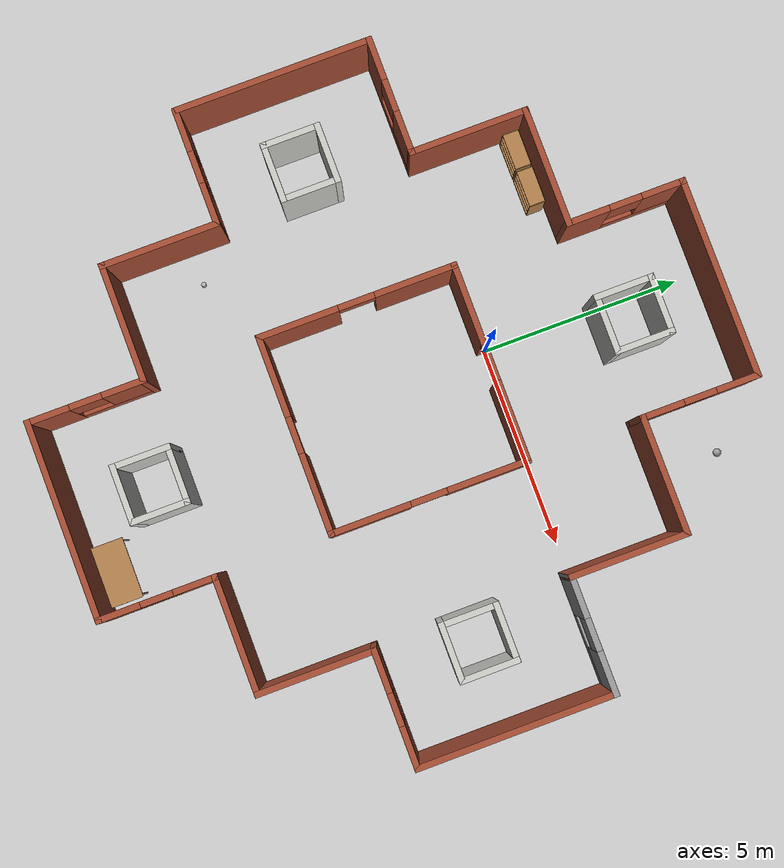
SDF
<sdf version="1.6">
 <world name="default">
  <light name="sun" type="directional">
   <pose>0 0 10 0 -0 0</pose>
   <diffuse>0.8 0.8 0.8 1</diffuse>
   <specular>0.2 0.2 0.2 1</specular>
   <attenuation>
    <range>1000</range>
    <constant>0.9</constant>
    <linear>0.01</linear>
    <quadratic>0.001</quadratic>
   </attenuation>
   <direction>-0.5 0.1 -0.9</direction>
  </light>
  <model name="ground_plane">
   <static>1</static>
   <link name="link">
    <collision name="collision">
     <geometry><plane><normal>0 0 1</normal><size>100 100</size></plane></geometry>
     <surface><friction><ode><mu>100</mu><mu2>50</mu2></ode></friction></surface>
    </collision>
    <visual name="visual">
     <cast_shadows>0</cast_shadows>
     <geometry><plane><normal>0 0 1</normal><size>100 100</size></plane></geometry>
     <material>
      <script><uri>file://media/materials/scripts/gazebo.material</uri><name>Gazebo/Grey</name></script>
     </material>
    </visual>
   </link>
  </model>
  <gravity>0 0 -9.8</gravity>
  <magnetic_field>6e-06 2.3e-05 -4.2e-05</magnetic_field>
  <atmosphere type="adiabatic"/>
  <physics name="default_physics" default="0" type="ode">
   <max_step_size>0.001</max_step_size>
   <real_time_factor>1</real_time_factor>
   <real_time_update_rate>1000</real_time_update_rate>
  </physics>
  <scene><ambient>0.4 0.4 0.4 1</ambient><background>0.7 0.7 0.7 1</background><shadows>1</shadows></scene>
  <spherical_coordinates>
   <surface_model>EARTH_WGS84</surface_model>
   <latitude_deg>0</latitude_deg>
   <longitude_deg>0</longitude_deg>
   <elevation>0</elevation>
   <heading_deg>0</heading_deg>
  </spherical_coordinates>
  <model name="flower_building">
   <pose>0.473289 -2.56902 0 0 -0 0</pose>
   <link name="Wall_0">
    <pose>0 -2.425 0 0 -0 0</pose>
    <visual name="Wall_0_Visual_0">
     <pose>-1.47548 0 1.25 0 -0 0</pose>
     <geometry><box><size>2.04905 0.15 2.5</size></box></geometry>
     <material>
      <script><uri>file://media/materials/scripts/gazebo.material</uri><name>Gazebo/Bricks</name></script>
      <ambient>1 1 1 1</ambient>
     </material>
     <meta><layer>0</layer></meta>
    </visual>
    <collision name="Wall_0_Collision_0">
     <geometry><box><size>2.04905 0.15 2.5</size></box></geometry>
     <pose>-1.47548 0 1.25 0 -0 0</pose>
    </collision>
    <visual name="Wall_0_Visual_1">
     <pose>1.47452 0 1.25 0 -0 0</pose>
     <geometry><box><size>2.05096 0.15 2.5</size></box></geometry>
     <material>
      <script><uri>file://media/materials/scripts/gazebo.material</uri><name>Gazebo/Bricks</name></script>
      <ambient>1 1 1 1</ambient>
     </material>
     <meta><layer>0</layer></meta>
    </visual>
    <collision name="Wall_0_Collision_1">
     <geometry><box><size>2.05096 0.15 2.5</size></box></geometry>
     <pose>1.47452 0 1.25 0 -0 0</pose>
    </collision>
    <visual name="Wall_0_Visual_2">
     <pose>-0.000955 0 2.25 0 -0 0</pose>
     <geometry><box><size>0.9 0.15 0.5</size></box></geometry>
     <material>
      <script><uri>file://media/materials/scripts/gazebo.material</uri><name>Gazebo/Bricks</name></script>
      <ambient>1 1 1 1</ambient>
     </material>
     <meta><layer>0</layer></meta>
    </visual>
    <collision name="Wall_0_Collision_2">
     <geometry><box><size>0.9 0.15 0.5</size></box></geometry>
     <pose>-0.000955 0 2.25 0 -0 0</pose>
    </collision>
   </link>
   <link name="Wall_1">
    <pose>2.425 0 0 0 -0 1.5708</pose>
    <visual name="Wall_1_Visual_0">
     <pose>-1.47928 0 1.25 0 -0 0</pose>
     <geometry><box><size>2.04145 0.15 2.5</size></box></geometry>
     <material>
      <script><uri>file://media/materials/scripts/gazebo.material</uri><name>Gazebo/Bricks</name></script>
      <ambient>1 1 1 1</ambient>
     </material>
     <meta><layer>0</layer></meta>
    </visual>
    <collision name="Wall_1_Collision_0">
     <geometry><box><size>2.04145 0.15 2.5</size></box></geometry>
     <pose>-1.47928 0 1.25 0 -0 0</pose>
    </collision>
    <visual name="Wall_1_Visual_1">
     <pose>1.47072 0 1.25 0 -0 0</pose>
     <geometry><box><size>2.05855 0.15 2.5</size></box></geometry>
     <material>
      <script><uri>file://media/materials/scripts/gazebo.material</uri><name>Gazebo/Bricks</name></script>
      <ambient>1 1 1 1</ambient>
     </material>
     <meta><layer>0</layer></meta>
    </visual>
    <collision name="Wall_1_Collision_1">
     <geometry><box><size>2.05855 0.15 2.5</size></box></geometry>
     <pose>1.47072 0 1.25 0 -0 0</pose>
    </collision>
    <visual name="Wall_1_Visual_2">
     <pose>-0.008554 0 2.25 0 -0 0</pose>
     <geometry><box><size>0.9 0.15 0.5</size></box></geometry>
     <material>
      <script><uri>file://media/materials/scripts/gazebo.material</uri><name>Gazebo/Bricks</name></script>
      <ambient>1 1 1 1</ambient>
     </material>
     <meta><layer>0</layer></meta>
    </visual>
    <collision name="Wall_1_Collision_2">
     <geometry><box><size>0.9 0.15 0.5</size></box></geometry>
     <pose>-0.008554 0 2.25 0 -0 0</pose>
    </collision>
   </link>
   <link name="Wall_10">
    <collision name="Wall_10_Collision">
     <geometry><box><size>5 0.15 2.5</size></box></geometry>
     <pose>0 0 1.25 0 -0 0</pose>
    </collision>
    <visual name="Wall_10_Visual">
     <pose>0 0 1.25 0 -0 0</pose>
     <geometry><box><size>5 0.15 2.5</size></box></geometry>
     <material>
      <script><uri>file://media/materials/scripts/gazebo.material</uri><name>Gazebo/Bricks</name></script>
      <ambient>1 1 1 1</ambient>
     </material>
     <meta><layer>0</layer></meta>
    </visual>
    <pose>-8.125 0 0 0 -0 1.5708</pose>
   </link>
   <link name="Wall_11">
    <pose>-6.7 2.425 0 0 -0 0</pose>
    <visual name="Wall_11_Visual_0">
     <pose>-0.954007 0 1.25 0 -0 0</pose>
     <geometry><box><size>1.09199 0.15 2.5</size></box></geometry>
     <material>
      <script><uri>file://media/materials/scripts/gazebo.material</uri><name>Gazebo/Bricks</name></script>
      <ambient>1 1 1 1</ambient>
     </material>
     <meta><layer>0</layer></meta>
    </visual>
    <collision name="Wall_11_Collision_0">
     <geometry><box><size>1.09199 0.15 2.5</size></box></geometry>
     <pose>-0.954007 0 1.25 0 -0 0</pose>
    </collision>
    <visual name="Wall_11_Visual_1">
     <pose>0.545993 0 0.25 0 -0 0</pose>
     <geometry><box><size>1.90801 0.15 0.5</size></box></geometry>
     <material>
      <script><uri>file://media/materials/scripts/gazebo.material</uri><name>Gazebo/Bricks</name></script>
      <ambient>1 1 1 1</ambient>
     </material>
     <meta><layer>0</layer></meta>
    </visual>
    <collision name="Wall_11_Collision_1">
     <geometry><box><size>1.90801 0.15 0.5</size></box></geometry>
     <pose>0.545993 0 0.25 0 -0 0</pose>
    </collision>
    <visual name="Wall_11_Visual_2">
     <pose>0.945993 0 1.5 0 -0 0</pose>
     <geometry><box><size>1.10801 0.15 2</size></box></geometry>
     <material>
      <script><uri>file://media/materials/scripts/gazebo.material</uri><name>Gazebo/Bricks</name></script>
      <ambient>1 1 1 1</ambient>
     </material>
     <meta><layer>0</layer></meta>
    </visual>
    <collision name="Wall_11_Collision_2">
     <geometry><box><size>1.10801 0.15 2</size></box></geometry>
     <pose>0.945993 0 1.5 0 -0 0</pose>
    </collision>
    <visual name="Wall_11_Visual_3">
     <pose>-0.008013 0 1.9 0 -0 0</pose>
     <geometry><box><size>0.8 0.15 1.2</size></box></geometry>
     <material>
      <script><uri>file://media/materials/scripts/gazebo.material</uri><name>Gazebo/Bricks</name></script>
      <ambient>1 1 1 1</ambient>
     </material>
     <meta><layer>0</layer></meta>
    </visual>
    <collision name="Wall_11_Collision_3">
     <geometry><box><size>0.8 0.15 1.2</size></box></geometry>
     <pose>-0.008013 0 1.9 0 -0 0</pose>
    </collision>
   </link>
   <link name="Wall_12">
    <collision name="Wall_12_Collision">
     <geometry><box><size>3 0.15 2.5</size></box></geometry>
     <pose>0 0 1.25 0 -0 0</pose>
    </collision>
    <visual name="Wall_12_Visual">
     <pose>0 0 1.25 0 -0 0</pose>
     <geometry><box><size>3 0.15 2.5</size></box></geometry>
     <material>
      <script><uri>file://media/materials/scripts/gazebo.material</uri><name>Gazebo/Bricks</name></script>
      <ambient>1 1 1 1</ambient>
     </material>
     <meta><layer>0</layer></meta>
    </visual>
    <pose>-5.275 3.85 0 0 -0 1.5708</pose>
   </link>
   <link name="Wall_13">
    <collision name="Wall_13_Collision">
     <geometry><box><size>3 0.15 2.5</size></box></geometry>
     <pose>0 0 1.25 0 -0 0</pose>
    </collision>
    <visual name="Wall_13_Visual">
     <pose>0 0 1.25 0 -0 0</pose>
     <geometry><box><size>3 0.15 2.5</size></box></geometry>
     <material>
      <script><uri>file://media/materials/scripts/gazebo.material</uri><name>Gazebo/Bricks</name></script>
      <ambient>1 1 1 1</ambient>
     </material>
     <meta><layer>0</layer></meta>
    </visual>
    <pose>-3.85 5.275 0 0 -0 0</pose>
   </link>
   <link name="Wall_14">
    <pose>-2.425 6.7 0 0 -0 1.5708</pose>
    <visual name="Wall_14_Visual_0">
     <pose>-0.950748 0 1.25 0 -0 0</pose>
     <geometry><box><size>1.09851 0.15 2.5</size></box></geometry>
     <material>
      <script><uri>file://media/materials/scripts/gazebo.material</uri><name>Gazebo/Bricks</name></script>
      <ambient>1 1 1 1</ambient>
     </material>
     <meta><layer>0</layer></meta>
    </visual>
    <collision name="Wall_14_Collision_0">
     <geometry><box><size>1.09851 0.15 2.5</size></box></geometry>
     <pose>-0.950748 0 1.25 0 -0 0</pose>
    </collision>
    <visual name="Wall_14_Visual_1">
     <pose>0.549252 0 0.25 0 -0 0</pose>
     <geometry><box><size>1.90149 0.15 0.5</size></box></geometry>
     <material>
      <script><uri>file://media/materials/scripts/gazebo.material</uri><name>Gazebo/Bricks</name></script>
      <ambient>1 1 1 1</ambient>
     </material>
     <meta><layer>0</layer></meta>
    </visual>
    <collision name="Wall_14_Collision_1">
     <geometry><box><size>1.90149 0.15 0.5</size></box></geometry>
     <pose>0.549252 0 0.25 0 -0 0</pose>
    </collision>
    <visual name="Wall_14_Visual_2">
     <pose>0.949252 0 1.5 0 -0 0</pose>
     <geometry><box><size>1.10149 0.15 2</size></box></geometry>
     <material>
      <script><uri>file://media/materials/scripts/gazebo.material</uri><name>Gazebo/Bricks</name></script>
      <ambient>1 1 1 1</ambient>
     </material>
     <meta><layer>0</layer></meta>
    </visual>
    <collision name="Wall_14_Collision_2">
     <geometry><box><size>1.10149 0.15 2</size></box></geometry>
     <pose>0.949252 0 1.5 0 -0 0</pose>
    </collision>
    <visual name="Wall_14_Visual_3">
     <pose>-0.001495 0 1.9 0 -0 0</pose>
     <geometry><box><size>0.8 0.15 1.2</size></box></geometry>
     <material>
      <script><uri>file://media/materials/scripts/gazebo.material</uri><name>Gazebo/Bricks</name></script>
      <ambient>1 1 1 1</ambient>
     </material>
     <meta><layer>0</layer></meta>
    </visual>
    <collision name="Wall_14_Collision_3">
     <geometry><box><size>0.8 0.15 1.2</size></box></geometry>
     <pose>-0.001495 0 1.9 0 -0 0</pose>
    </collision>
   </link>
   <link name="Wall_15">
    <collision name="Wall_15_Collision">
     <geometry><box><size>5 0.15 2.5</size></box></geometry>
     <pose>0 0 1.25 0 -0 0</pose>
    </collision>
    <visual name="Wall_15_Visual">
     <pose>0 0 1.25 0 -0 0</pose>
     <geometry><box><size>5 0.15 2.5</size></box></geometry>
     <material>
      <script><uri>file://media/materials/scripts/gazebo.material</uri><name>Gazebo/Bricks</name></script>
      <ambient>1 1 1 1</ambient>
     </material>
     <meta><layer>0</layer></meta>
    </visual>
    <pose>0 8.125 0 0 -0 0</pose>
   </link>
   <link name="Wall_18">
    <pose>2.425 6.7 0 0 0 -1.5708</pose>
    <visual name="Wall_18_Visual_0">
     <pose>-0.949252 0 1.25 0 -0 0</pose>
     <geometry><box><size>1.10149 0.15 2.5</size></box></geometry>
     <material>
      <script><uri>file://media/materials/scripts/gazebo.material</uri><name>Gazebo/Bricks</name></script>
      <ambient>1 1 1 1</ambient>
     </material>
     <meta><layer>0</layer></meta>
    </visual>
    <collision name="Wall_18_Collision_0">
     <geometry><box><size>1.10149 0.15 2.5</size></box></geometry>
     <pose>-0.949252 0 1.25 0 -0 0</pose>
    </collision>
    <visual name="Wall_18_Visual_1">
     <pose>0.550748 0 0.25 0 -0 0</pose>
     <geometry><box><size>1.89851 0.15 0.5</size></box></geometry>
     <material>
      <script><uri>file://media/materials/scripts/gazebo.material</uri><name>Gazebo/Bricks</name></script>
      <ambient>1 1 1 1</ambient>
     </material>
     <meta><layer>0</layer></meta>
    </visual>
    <collision name="Wall_18_Collision_1">
     <geometry><box><size>1.89851 0.15 0.5</size></box></geometry>
     <pose>0.550748 0 0.25 0 -0 0</pose>
    </collision>
    <visual name="Wall_18_Visual_2">
     <pose>0.950748 0 1.5 0 -0 0</pose>
     <geometry><box><size>1.09851 0.15 2</size></box></geometry>
     <material>
      <script><uri>file://media/materials/scripts/gazebo.material</uri><name>Gazebo/Bricks</name></script>
      <ambient>1 1 1 1</ambient>
     </material>
     <meta><layer>0</layer></meta>
    </visual>
    <collision name="Wall_18_Collision_2">
     <geometry><box><size>1.09851 0.15 2</size></box></geometry>
     <pose>0.950748 0 1.5 0 -0 0</pose>
    </collision>
    <visual name="Wall_18_Visual_3">
     <pose>0.001495 0 1.9 0 -0 0</pose>
     <geometry><box><size>0.8 0.15 1.2</size></box></geometry>
     <material>
      <script><uri>file://media/materials/scripts/gazebo.material</uri><name>Gazebo/Bricks</name></script>
      <ambient>1 1 1 1</ambient>
     </material>
     <meta><layer>0</layer></meta>
    </visual>
    <collision name="Wall_18_Collision_3">
     <geometry><box><size>0.8 0.15 1.2</size></box></geometry>
     <pose>0.001495 0 1.9 0 -0 0</pose>
    </collision>
   </link>
   <link name="Wall_19">
    <collision name="Wall_19_Collision">
     <geometry><box><size>3 0.15 2.5</size></box></geometry>
     <pose>0 0 1.25 0 -0 0</pose>
    </collision>
    <visual name="Wall_19_Visual">
     <pose>0 0 1.25 0 -0 0</pose>
     <geometry><box><size>3 0.15 2.5</size></box></geometry>
     <material>
      <script><uri>file://media/materials/scripts/gazebo.material</uri><name>Gazebo/Bricks</name></script>
      <ambient>1 1 1 1</ambient>
     </material>
     <meta><layer>0</layer></meta>
    </visual>
    <pose>3.85 5.275 0 0 -0 0</pose>
   </link>
   <link name="Wall_2">
    <pose>0 2.425 0 0 -0 3.14159</pose>
    <visual name="Wall_2_Visual_0">
     <pose>-1.47452 0 1.25 0 -0 0</pose>
     <geometry><box><size>2.05096 0.15 2.5</size></box></geometry>
     <material>
      <script><uri>file://media/materials/scripts/gazebo.material</uri><name>Gazebo/Bricks</name></script>
      <ambient>1 1 1 1</ambient>
     </material>
     <meta><layer>0</layer></meta>
    </visual>
    <collision name="Wall_2_Collision_0">
     <geometry><box><size>2.05096 0.15 2.5</size></box></geometry>
     <pose>-1.47452 0 1.25 0 -0 0</pose>
    </collision>
    <visual name="Wall_2_Visual_1">
     <pose>1.47548 0 1.25 0 -0 0</pose>
     <geometry><box><size>2.04905 0.15 2.5</size></box></geometry>
     <material>
      <script><uri>file://media/materials/scripts/gazebo.material</uri><name>Gazebo/Bricks</name></script>
      <ambient>1 1 1 1</ambient>
     </material>
     <meta><layer>0</layer></meta>
    </visual>
    <collision name="Wall_2_Collision_1">
     <geometry><box><size>2.04905 0.15 2.5</size></box></geometry>
     <pose>1.47548 0 1.25 0 -0 0</pose>
    </collision>
    <visual name="Wall_2_Visual_2">
     <pose>0.000955 0 2.25 0 -0 0</pose>
     <geometry><box><size>0.9 0.15 0.5</size></box></geometry>
     <material>
      <script><uri>file://media/materials/scripts/gazebo.material</uri><name>Gazebo/Bricks</name></script>
      <ambient>1 1 1 1</ambient>
     </material>
     <meta><layer>0</layer></meta>
    </visual>
    <collision name="Wall_2_Collision_2">
     <geometry><box><size>0.9 0.15 0.5</size></box></geometry>
     <pose>0.000955 0 2.25 0 -0 0</pose>
    </collision>
   </link>
   <link name="Wall_20">
    <collision name="Wall_20_Collision">
     <geometry><box><size>3 0.15 2.5</size></box></geometry>
     <pose>0 0 1.25 0 -0 0</pose>
    </collision>
    <visual name="Wall_20_Visual">
     <pose>0 0 1.25 0 -0 0</pose>
     <geometry><box><size>3 0.15 2.5</size></box></geometry>
     <material>
      <script><uri>file://media/materials/scripts/gazebo.material</uri><name>Gazebo/Bricks</name></script>
      <ambient>1 1 1 1</ambient>
     </material>
     <meta><layer>0</layer></meta>
    </visual>
    <pose>5.275 3.85 0 0 0 -1.5708</pose>
   </link>
   <link name="Wall_21">
    <pose>6.7 2.425 0 0 -0 0</pose>
    <visual name="Wall_21_Visual_0">
     <pose>-0.954552 0 1.25 0 -0 0</pose>
     <geometry><box><size>1.09089 0.15 2.5</size></box></geometry>
     <material>
      <script><uri>file://media/materials/scripts/gazebo.material</uri><name>Gazebo/Grey</name></script>
      <ambient>1 1 1 1</ambient>
     </material>
     <meta><layer>0</layer></meta>
    </visual>
    <collision name="Wall_21_Collision_0">
     <geometry><box><size>1.09089 0.15 2.5</size></box></geometry>
     <pose>-0.954552 0 1.25 0 -0 0</pose>
    </collision>
    <visual name="Wall_21_Visual_1">
     <pose>0.545448 0 0.25 0 -0 0</pose>
     <geometry><box><size>1.90911 0.15 0.5</size></box></geometry>
     <material>
      <script><uri>file://media/materials/scripts/gazebo.material</uri><name>Gazebo/Grey</name></script>
      <ambient>1 1 1 1</ambient>
     </material>
     <meta><layer>0</layer></meta>
    </visual>
    <collision name="Wall_21_Collision_1">
     <geometry><box><size>1.90911 0.15 0.5</size></box></geometry>
     <pose>0.545448 0 0.25 0 -0 0</pose>
    </collision>
    <visual name="Wall_21_Visual_2">
     <pose>0.945448 0 1.5 0 -0 0</pose>
     <geometry><box><size>1.10911 0.15 2</size></box></geometry>
     <material>
      <script><uri>file://media/materials/scripts/gazebo.material</uri><name>Gazebo/Grey</name></script>
      <ambient>1 1 1 1</ambient>
     </material>
     <meta><layer>0</layer></meta>
    </visual>
    <collision name="Wall_21_Collision_2">
     <geometry><box><size>1.10911 0.15 2</size></box></geometry>
     <pose>0.945448 0 1.5 0 -0 0</pose>
    </collision>
    <visual name="Wall_21_Visual_3">
     <pose>-0.009105 0 1.9 0 -0 0</pose>
     <geometry><box><size>0.8 0.15 1.2</size></box></geometry>
     <material>
      <script><uri>file://media/materials/scripts/gazebo.material</uri><name>Gazebo/Grey</name></script>
      <ambient>1 1 1 1</ambient>
     </material>
     <meta><layer>0</layer></meta>
    </visual>
    <collision name="Wall_21_Collision_3">
     <geometry><box><size>0.8 0.15 1.2</size></box></geometry>
     <pose>-0.009105 0 1.9 0 -0 0</pose>
    </collision>
   </link>
   <link name="Wall_22">
    <collision name="Wall_22_Collision">
     <geometry><box><size>5 0.15 2.5</size></box></geometry>
     <pose>0 0 1.25 0 -0 0</pose>
    </collision>
    <visual name="Wall_22_Visual">
     <pose>0 0 1.25 0 -0 0</pose>
     <geometry><box><size>5 0.15 2.5</size></box></geometry>
     <material>
      <script><uri>file://media/materials/scripts/gazebo.material</uri><name>Gazebo/Bricks</name></script>
      <ambient>1 1 1 1</ambient>
     </material>
     <meta><layer>0</layer></meta>
    </visual>
    <pose>8.125 0 0 0 0 -1.5708</pose>
   </link>
   <link name="Wall_23">
    <pose>6.7 -2.425 0 0 -0 3.14159</pose>
    <visual name="Wall_23_Visual_0">
     <pose>-0.953052 0 1.25 0 -0 0</pose>
     <geometry><box><size>1.0939 0.15 2.5</size></box></geometry>
     <material>
      <script><uri>file://media/materials/scripts/gazebo.material</uri><name>Gazebo/Bricks</name></script>
      <ambient>1 1 1 1</ambient>
     </material>
     <meta><layer>0</layer></meta>
    </visual>
    <collision name="Wall_23_Collision_0">
     <geometry><box><size>1.0939 0.15 2.5</size></box></geometry>
     <pose>-0.953052 0 1.25 0 -0 0</pose>
    </collision>
    <visual name="Wall_23_Visual_1">
     <pose>0.546948 0 0.25 0 -0 0</pose>
     <geometry><box><size>1.9061 0.15 0.5</size></box></geometry>
     <material>
      <script><uri>file://media/materials/scripts/gazebo.material</uri><name>Gazebo/Bricks</name></script>
      <ambient>1 1 1 1</ambient>
     </material>
     <meta><layer>0</layer></meta>
    </visual>
    <collision name="Wall_23_Collision_1">
     <geometry><box><size>1.9061 0.15 0.5</size></box></geometry>
     <pose>0.546948 0 0.25 0 -0 0</pose>
    </collision>
    <visual name="Wall_23_Visual_2">
     <pose>0.946948 0 1.5 0 -0 0</pose>
     <geometry><box><size>1.1061 0.15 2</size></box></geometry>
     <material>
      <script><uri>file://media/materials/scripts/gazebo.material</uri><name>Gazebo/Bricks</name></script>
      <ambient>1 1 1 1</ambient>
     </material>
     <meta><layer>0</layer></meta>
    </visual>
    <collision name="Wall_23_Collision_2">
     <geometry><box><size>1.1061 0.15 2</size></box></geometry>
     <pose>0.946948 0 1.5 0 -0 0</pose>
    </collision>
    <visual name="Wall_23_Visual_3">
     <pose>-0.006104 0 1.9 0 -0 0</pose>
     <geometry><box><size>0.8 0.15 1.2</size></box></geometry>
     <material>
      <script><uri>file://media/materials/scripts/gazebo.material</uri><name>Gazebo/Bricks</name></script>
      <ambient>1 1 1 1</ambient>
     </material>
     <meta><layer>0</layer></meta>
    </visual>
    <collision name="Wall_23_Collision_3">
     <geometry><box><size>0.8 0.15 1.2</size></box></geometry>
     <pose>-0.006104 0 1.9 0 -0 0</pose>
    </collision>
   </link>
   <link name="Wall_24">
    <collision name="Wall_24_Collision">
     <geometry><box><size>3 0.15 2.5</size></box></geometry>
     <pose>0 0 1.25 0 -0 0</pose>
    </collision>
    <visual name="Wall_24_Visual">
     <pose>0 0 1.25 0 -0 0</pose>
     <geometry><box><size>3 0.15 2.5</size></box></geometry>
     <material>
      <script><uri>file://media/materials/scripts/gazebo.material</uri><name>Gazebo/Bricks</name></script>
      <ambient>1 1 1 1</ambient>
     </material>
     <meta><layer>0</layer></meta>
    </visual>
    <pose>5.275 -3.85 0 0 0 -1.5708</pose>
   </link>
   <link name="Wall_25">
    <collision name="Wall_25_Collision">
     <geometry><box><size>3 0.15 2.5</size></box></geometry>
     <pose>0 0 1.25 0 -0 0</pose>
    </collision>
    <visual name="Wall_25_Visual">
     <pose>0 0 1.25 0 -0 0</pose>
     <geometry><box><size>3 0.15 2.5</size></box></geometry>
     <material>
      <script><uri>file://media/materials/scripts/gazebo.material</uri><name>Gazebo/Bricks</name></script>
      <ambient>1 1 1 1</ambient>
     </material>
     <meta><layer>0</layer></meta>
    </visual>
    <pose>3.85 -5.275 0 0 -0 3.14159</pose>
   </link>
   <link name="Wall_26">
    <pose>2.425 -6.7 0 0 0 -1.5708</pose>
    <visual name="Wall_26_Visual_0">
     <pose>-0.949798 0 1.25 0 -0 0</pose>
     <geometry><box><size>1.1004 0.15 2.5</size></box></geometry>
     <material>
      <script><uri>file://media/materials/scripts/gazebo.material</uri><name>Gazebo/Bricks</name></script>
      <ambient>1 1 1 1</ambient>
     </material>
     <meta><layer>0</layer></meta>
    </visual>
    <collision name="Wall_26_Collision_0">
     <geometry><box><size>1.1004 0.15 2.5</size></box></geometry>
     <pose>-0.949798 0 1.25 0 -0 0</pose>
    </collision>
    <visual name="Wall_26_Visual_1">
     <pose>0.550202 0 0.25 0 -0 0</pose>
     <geometry><box><size>1.8996 0.15 0.5</size></box></geometry>
     <material>
      <script><uri>file://media/materials/scripts/gazebo.material</uri><name>Gazebo/Bricks</name></script>
      <ambient>1 1 1 1</ambient>
     </material>
     <meta><layer>0</layer></meta>
    </visual>
    <collision name="Wall_26_Collision_1">
     <geometry><box><size>1.8996 0.15 0.5</size></box></geometry>
     <pose>0.550202 0 0.25 0 -0 0</pose>
    </collision>
    <visual name="Wall_26_Visual_2">
     <pose>0.950202 0 1.5 0 -0 0</pose>
     <geometry><box><size>1.0996 0.15 2</size></box></geometry>
     <material>
      <script><uri>file://media/materials/scripts/gazebo.material</uri><name>Gazebo/Bricks</name></script>
      <ambient>1 1 1 1</ambient>
     </material>
     <meta><layer>0</layer></meta>
    </visual>
    <collision name="Wall_26_Collision_2">
     <geometry><box><size>1.0996 0.15 2</size></box></geometry>
     <pose>0.950202 0 1.5 0 -0 0</pose>
    </collision>
    <visual name="Wall_26_Visual_3">
     <pose>0.000404 0 1.9 0 -0 0</pose>
     <geometry><box><size>0.8 0.15 1.2</size></box></geometry>
     <material>
      <script><uri>file://media/materials/scripts/gazebo.material</uri><name>Gazebo/Bricks</name></script>
      <ambient>1 1 1 1</ambient>
     </material>
     <meta><layer>0</layer></meta>
    </visual>
    <collision name="Wall_26_Collision_3">
     <geometry><box><size>0.8 0.15 1.2</size></box></geometry>
     <pose>0.000404 0 1.9 0 -0 0</pose>
    </collision>
   </link>
   <link name="Wall_27">
    <collision name="Wall_27_Collision">
     <geometry><box><size>5 0.15 2.5</size></box></geometry>
     <pose>0 0 1.25 0 -0 0</pose>
    </collision>
    <visual name="Wall_27_Visual">
     <pose>0 0 1.25 0 -0 0</pose>
     <geometry><box><size>5 0.15 2.5</size></box></geometry>
     <material>
      <script><uri>file://media/materials/scripts/gazebo.material</uri><name>Gazebo/Bricks</name></script>
      <ambient>1 1 1 1</ambient>
     </material>
     <meta><layer>0</layer></meta>
    </visual>
    <pose>0 -8.125 0 0 -0 3.14159</pose>
   </link>
   <link name="Wall_28">
    <pose>-2.425 -6.7 0 0 -0 1.5708</pose>
    <visual name="Wall_28_Visual_0">
     <pose>-0.950202 0 1.25 0 -0 0</pose>
     <geometry><box><size>1.0996 0.15 2.5</size></box></geometry>
     <material>
      <script><uri>file://media/materials/scripts/gazebo.material</uri><name>Gazebo/Bricks</name></script>
      <ambient>1 1 1 1</ambient>
     </material>
     <meta><layer>0</layer></meta>
    </visual>
    <collision name="Wall_28_Collision_0">
     <geometry><box><size>1.0996 0.15 2.5</size></box></geometry>
     <pose>-0.950202 0 1.25 0 -0 0</pose>
    </collision>
    <visual name="Wall_28_Visual_1">
     <pose>0.549798 0 0.25 0 -0 0</pose>
     <geometry><box><size>1.9004 0.15 0.5</size></box></geometry>
     <material>
      <script><uri>file://media/materials/scripts/gazebo.material</uri><name>Gazebo/Bricks</name></script>
      <ambient>1 1 1 1</ambient>
     </material>
     <meta><layer>0</layer></meta>
    </visual>
    <collision name="Wall_28_Collision_1">
     <geometry><box><size>1.9004 0.15 0.5</size></box></geometry>
     <pose>0.549798 0 0.25 0 -0 0</pose>
    </collision>
    <visual name="Wall_28_Visual_2">
     <pose>0.949798 0 1.5 0 -0 0</pose>
     <geometry><box><size>1.1004 0.15 2</size></box></geometry>
     <material>
      <script><uri>file://media/materials/scripts/gazebo.material</uri><name>Gazebo/Bricks</name></script>
      <ambient>1 1 1 1</ambient>
     </material>
     <meta><layer>0</layer></meta>
    </visual>
    <collision name="Wall_28_Collision_2">
     <geometry><box><size>1.1004 0.15 2</size></box></geometry>
     <pose>0.949798 0 1.5 0 -0 0</pose>
    </collision>
    <visual name="Wall_28_Visual_3">
     <pose>-0.000404 0 1.9 0 -0 0</pose>
     <geometry><box><size>0.8 0.15 1.2</size></box></geometry>
     <material>
      <script><uri>file://media/materials/scripts/gazebo.material</uri><name>Gazebo/Bricks</name></script>
      <ambient>1 1 1 1</ambient>
     </material>
     <meta><layer>0</layer></meta>
    </visual>
    <collision name="Wall_28_Collision_3">
     <geometry><box><size>0.8 0.15 1.2</size></box></geometry>
     <pose>-0.000404 0 1.9 0 -0 0</pose>
    </collision>
   </link>
   <link name="Wall_3">
    <pose>-2.425 0 0 0 0 -1.5708</pose>
    <visual name="Wall_3_Visual_0">
     <pose>-1.47072 0 1.25 0 -0 0</pose>
     <geometry><box><size>2.05855 0.15 2.5</size></box></geometry>
     <material>
      <script><uri>file://media/materials/scripts/gazebo.material</uri><name>Gazebo/Bricks</name></script>
      <ambient>1 1 1 1</ambient>
     </material>
     <meta><layer>0</layer></meta>
    </visual>
    <collision name="Wall_3_Collision_0">
     <geometry><box><size>2.05855 0.15 2.5</size></box></geometry>
     <pose>-1.47072 0 1.25 0 -0 0</pose>
    </collision>
    <visual name="Wall_3_Visual_1">
     <pose>1.47928 0 1.25 0 -0 0</pose>
     <geometry><box><size>2.04145 0.15 2.5</size></box></geometry>
     <material>
      <script><uri>file://media/materials/scripts/gazebo.material</uri><name>Gazebo/Bricks</name></script>
      <ambient>1 1 1 1</ambient>
     </material>
     <meta><layer>0</layer></meta>
    </visual>
    <collision name="Wall_3_Collision_1">
     <geometry><box><size>2.04145 0.15 2.5</size></box></geometry>
     <pose>1.47928 0 1.25 0 -0 0</pose>
    </collision>
    <visual name="Wall_3_Visual_2">
     <pose>0.008554 0 2.25 0 -0 0</pose>
     <geometry><box><size>0.9 0.15 0.5</size></box></geometry>
     <material>
      <script><uri>file://media/materials/scripts/gazebo.material</uri><name>Gazebo/Bricks</name></script>
      <ambient>1 1 1 1</ambient>
     </material>
     <meta><layer>0</layer></meta>
    </visual>
    <collision name="Wall_3_Collision_2">
     <geometry><box><size>0.9 0.15 0.5</size></box></geometry>
     <pose>0.008554 0 2.25 0 -0 0</pose>
    </collision>
   </link>
   <link name="Wall_31">
    <collision name="Wall_31_Collision">
     <geometry><box><size>1.5 0.15 2.5</size></box></geometry>
     <pose>0 0 1.25 0 -0 0</pose>
    </collision>
    <visual name="Wall_31_Visual">
     <pose>0 0 1.25 0 -0 0</pose>
     <geometry><box><size>1.5 0.15 2.5</size></box></geometry>
     <material>
      <script><uri>file://media/materials/scripts/gazebo.material</uri><name>Gazebo/CeilingTiled</name></script>
      <ambient>1 1 1 1</ambient>
     </material>
     <meta><layer>0</layer></meta>
    </visual>
    <pose>-0.575 5.95 0 0 -0 1.5708</pose>
   </link>
   <link name="Wall_32">
    <collision name="Wall_32_Collision">
     <geometry><box><size>1.5 0.15 2.5</size></box></geometry>
     <pose>0 0 1.25 0 -0 0</pose>
    </collision>
    <visual name="Wall_32_Visual">
     <pose>0 0 1.25 0 -0 0</pose>
     <geometry><box><size>1.5 0.15 2.5</size></box></geometry>
     <material>
      <script><uri>file://media/materials/scripts/gazebo.material</uri><name>Gazebo/CeilingTiled</name></script>
      <ambient>1 1 1 1</ambient>
     </material>
     <meta><layer>0</layer></meta>
    </visual>
    <pose>0.1 6.625 0 0 -0 0</pose>
   </link>
   <link name="Wall_33">
    <collision name="Wall_33_Collision">
     <geometry><box><size>1.5 0.15 2.5</size></box></geometry>
     <pose>0 0 1.25 0 -0 0</pose>
    </collision>
    <visual name="Wall_33_Visual">
     <pose>0 0 1.25 0 -0 0</pose>
     <geometry><box><size>1.5 0.15 2.5</size></box></geometry>
     <material>
      <script><uri>file://media/materials/scripts/gazebo.material</uri><name>Gazebo/CeilingTiled</name></script>
      <ambient>1 1 1 1</ambient>
     </material>
     <meta><layer>0</layer></meta>
    </visual>
    <pose>0.775 5.95 0 0 0 -1.5708</pose>
   </link>
   <link name="Wall_34">
    <collision name="Wall_34_Collision">
     <geometry><box><size>1.5 0.15 2.5</size></box></geometry>
     <pose>0 0 1.25 0 -0 0</pose>
    </collision>
    <visual name="Wall_34_Visual">
     <pose>0 0 1.25 0 -0 0</pose>
     <geometry><box><size>1.5 0.15 2.5</size></box></geometry>
     <material>
      <script><uri>file://media/materials/scripts/gazebo.material</uri><name>Gazebo/CeilingTiled</name></script>
      <ambient>1 1 1 1</ambient>
     </material>
     <meta><layer>0</layer></meta>
    </visual>
    <pose>0.1 5.275 0 0 -0 3.14159</pose>
   </link>
   <link name="Wall_37">
    <collision name="Wall_37_Collision">
     <geometry><box><size>1.5 0.15 2.5</size></box></geometry>
     <pose>0 0 1.25 0 -0 0</pose>
    </collision>
    <visual name="Wall_37_Visual">
     <pose>0 0 1.25 0 -0 0</pose>
     <geometry><box><size>1.5 0.15 2.5</size></box></geometry>
     <material>
      <script><uri>file://media/materials/scripts/gazebo.material</uri><name>Gazebo/CeilingTiled</name></script>
      <ambient>1 1 1 1</ambient>
     </material>
     <meta><layer>0</layer></meta>
    </visual>
    <pose>5.95 0.575 0 0 -0 0</pose>
   </link>
   <link name="Wall_38">
    <collision name="Wall_38_Collision">
     <geometry><box><size>1.5 0.15 2.5</size></box></geometry>
     <pose>0 0 1.25 0 -0 0</pose>
    </collision>
    <visual name="Wall_38_Visual">
     <pose>0 0 1.25 0 -0 0</pose>
     <geometry><box><size>1.5 0.15 2.5</size></box></geometry>
     <material>
      <script><uri>file://media/materials/scripts/gazebo.material</uri><name>Gazebo/CeilingTiled</name></script>
      <ambient>1 1 1 1</ambient>
     </material>
     <meta><layer>0</layer></meta>
    </visual>
    <pose>6.625 -0.1 0 0 0 -1.5708</pose>
   </link>
   <link name="Wall_39">
    <collision name="Wall_39_Collision">
     <geometry><box><size>1.5 0.15 2.5</size></box></geometry>
     <pose>0 0 1.25 0 -0 0</pose>
    </collision>
    <visual name="Wall_39_Visual">
     <pose>0 0 1.25 0 -0 0</pose>
     <geometry><box><size>1.5 0.15 2.5</size></box></geometry>
     <material>
      <script><uri>file://media/materials/scripts/gazebo.material</uri><name>Gazebo/CeilingTiled</name></script>
      <ambient>1 1 1 1</ambient>
     </material>
     <meta><layer>0</layer></meta>
    </visual>
    <pose>5.95 -0.775 0 0 -0 3.14159</pose>
   </link>
   <link name="Wall_40">
    <collision name="Wall_40_Collision">
     <geometry><box><size>1.5 0.15 2.5</size></box></geometry>
     <pose>0 0 1.25 0 -0 0</pose>
    </collision>
    <visual name="Wall_40_Visual">
     <pose>0 0 1.25 0 -0 0</pose>
     <geometry><box><size>1.5 0.15 2.5</size></box></geometry>
     <material>
      <script><uri>file://media/materials/scripts/gazebo.material</uri><name>Gazebo/CeilingTiled</name></script>
      <ambient>1 1 1 1</ambient>
     </material>
     <meta><layer>0</layer></meta>
    </visual>
    <pose>5.275 -0.1 0 0 -0 1.5708</pose>
   </link>
   <link name="Wall_44">
    <collision name="Wall_44_Collision">
     <geometry><box><size>1.5 0.15 2.5</size></box></geometry>
     <pose>0 0 1.25 0 -0 0</pose>
    </collision>
    <visual name="Wall_44_Visual">
     <pose>0 0 1.25 0 -0 0</pose>
     <geometry><box><size>1.5 0.15 2.5</size></box></geometry>
     <material>
      <script><uri>file://media/materials/scripts/gazebo.material</uri><name>Gazebo/CeilingTiled</name></script>
      <ambient>1 1 1 1</ambient>
     </material>
     <meta><layer>0</layer></meta>
    </visual>
    <pose>0.575 -5.95 0 0 0 -1.5708</pose>
   </link>
   <link name="Wall_45">
    <collision name="Wall_45_Collision">
     <geometry><box><size>1.5 0.15 2.5</size></box></geometry>
     <pose>0 0 1.25 0 -0 0</pose>
    </collision>
    <visual name="Wall_45_Visual">
     <pose>0 0 1.25 0 -0 0</pose>
     <geometry><box><size>1.5 0.15 2.5</size></box></geometry>
     <material>
      <script><uri>file://media/materials/scripts/gazebo.material</uri><name>Gazebo/CeilingTiled</name></script>
      <ambient>1 1 1 1</ambient>
     </material>
     <meta><layer>0</layer></meta>
    </visual>
    <pose>-0.1 -6.625 0 0 -0 3.14159</pose>
   </link>
   <link name="Wall_46">
    <collision name="Wall_46_Collision">
     <geometry><box><size>1.5 0.15 2.5</size></box></geometry>
     <pose>0 0 1.25 0 -0 0</pose>
    </collision>
    <visual name="Wall_46_Visual">
     <pose>0 0 1.25 0 -0 0</pose>
     <geometry><box><size>1.5 0.15 2.5</size></box></geometry>
     <material>
      <script><uri>file://media/materials/scripts/gazebo.material</uri><name>Gazebo/CeilingTiled</name></script>
      <ambient>1 1 1 1</ambient>
     </material>
     <meta><layer>0</layer></meta>
    </visual>
    <pose>-0.775 -5.95 0 0 -0 1.5708</pose>
   </link>
   <link name="Wall_47">
    <collision name="Wall_47_Collision">
     <geometry><box><size>1.5 0.15 2.5</size></box></geometry>
     <pose>0 0 1.25 0 -0 0</pose>
    </collision>
    <visual name="Wall_47_Visual">
     <pose>0 0 1.25 0 -0 0</pose>
     <geometry><box><size>1.5 0.15 2.5</size></box></geometry>
     <material>
      <script><uri>file://media/materials/scripts/gazebo.material</uri><name>Gazebo/CeilingTiled</name></script>
      <ambient>1 1 1 1</ambient>
     </material>
     <meta><layer>0</layer></meta>
    </visual>
    <pose>-0.1 -5.275 0 0 -0 0</pose>
   </link>
   <link name="Wall_5">
    <collision name="Wall_5_Collision">
     <geometry><box><size>0.15 0.15 2.5</size></box></geometry>
     <pose>0 0 1.25 0 -0 0</pose>
    </collision>
    <visual name="Wall_5_Visual">
     <pose>0 0 1.25 0 -0 0</pose>
     <geometry><box><size>0.15 0.15 2.5</size></box></geometry>
     <material>
      <script><uri>file://media/materials/scripts/gazebo.material</uri><name>Gazebo/Grey</name></script>
      <ambient>1 1 1 1</ambient>
     </material>
     <meta><layer>0</layer></meta>
    </visual>
    <pose>-5.275 -2.425 0 0 -0 0</pose>
   </link>
   <link name="Wall_51">
    <collision name="Wall_51_Collision">
     <geometry><box><size>1.5 0.15 2.5</size></box></geometry>
     <pose>0 0 1.25 0 -0 0</pose>
    </collision>
    <visual name="Wall_51_Visual">
     <pose>0 0 1.25 0 -0 0</pose>
     <geometry><box><size>1.5 0.15 2.5</size></box></geometry>
     <material>
      <script><uri>file://media/materials/scripts/gazebo.material</uri><name>Gazebo/CeilingTiled</name></script>
      <ambient>1 1 1 1</ambient>
     </material>
     <meta><layer>0</layer></meta>
    </visual>
    <pose>-5.95 0.575 0 0 -0 3.14159</pose>
   </link>
   <link name="Wall_52">
    <collision name="Wall_52_Collision">
     <geometry><box><size>1.5 0.15 2.5</size></box></geometry>
     <pose>0 0 1.25 0 -0 0</pose>
    </collision>
    <visual name="Wall_52_Visual">
     <pose>0 0 1.25 0 -0 0</pose>
     <geometry><box><size>1.5 0.15 2.5</size></box></geometry>
     <material>
      <script><uri>file://media/materials/scripts/gazebo.material</uri><name>Gazebo/CeilingTiled</name></script>
      <ambient>1 1 1 1</ambient>
     </material>
     <meta><layer>0</layer></meta>
    </visual>
    <pose>-6.625 -0.1 0 0 0 -1.5708</pose>
   </link>
   <link name="Wall_53">
    <collision name="Wall_53_Collision">
     <geometry><box><size>1.5 0.15 2.5</size></box></geometry>
     <pose>0 0 1.25 0 -0 0</pose>
    </collision>
    <visual name="Wall_53_Visual">
     <pose>0 0 1.25 0 -0 0</pose>
     <geometry><box><size>1.5 0.15 2.5</size></box></geometry>
     <material>
      <script><uri>file://media/materials/scripts/gazebo.material</uri><name>Gazebo/CeilingTiled</name></script>
      <ambient>1 1 1 1</ambient>
     </material>
     <meta><layer>0</layer></meta>
    </visual>
    <pose>-5.95 -0.775 0 0 -0 0</pose>
   </link>
   <link name="Wall_54">
    <collision name="Wall_54_Collision">
     <geometry><box><size>1.5 0.15 2.5</size></box></geometry>
     <pose>0 0 1.25 0 -0 0</pose>
    </collision>
    <visual name="Wall_54_Visual">
     <pose>0 0 1.25 0 -0 0</pose>
     <geometry><box><size>1.5 0.15 2.5</size></box></geometry>
     <material>
      <script><uri>file://media/materials/scripts/gazebo.material</uri><name>Gazebo/CeilingTiled</name></script>
      <ambient>1 1 1 1</ambient>
     </material>
     <meta><layer>0</layer></meta>
    </visual>
    <pose>-5.275 -0.1 0 0 -0 1.5708</pose>
   </link>
   <link name="Wall_6">
    <collision name="Wall_6_Collision">
     <geometry><box><size>3 0.15 2.5</size></box></geometry>
     <pose>0 0 1.25 0 -0 0</pose>
    </collision>
    <visual name="Wall_6_Visual">
     <pose>0 0 1.25 0 -0 0</pose>
     <geometry><box><size>3 0.15 2.5</size></box></geometry>
     <material>
      <script><uri>file://media/materials/scripts/gazebo.material</uri><name>Gazebo/Bricks</name></script>
      <ambient>1 1 1 1</ambient>
     </material>
     <meta><layer>0</layer></meta>
    </visual>
    <pose>-5.275 -3.85 0 0 0 -1.5708</pose>
   </link>
   <link name="Wall_7">
    <collision name="Wall_7_Collision">
     <geometry><box><size>3 0.15 2.5</size></box></geometry>
     <pose>0 0 1.25 0 -0 0</pose>
    </collision>
    <visual name="Wall_7_Visual">
     <pose>0 0 1.25 0 -0 0</pose>
     <geometry><box><size>3 0.15 2.5</size></box></geometry>
     <material>
      <script><uri>file://media/materials/scripts/gazebo.material</uri><name>Gazebo/Bricks</name></script>
      <ambient>1 1 1 1</ambient>
     </material>
     <meta><layer>0</layer></meta>
    </visual>
    <pose>-3.85 -5.275 0 0 -0 0</pose>
   </link>
   <link name="Wall_9">
    <pose>-6.7 -2.425 0 0 -0 3.14159</pose>
    <visual name="Wall_9_Visual_0">
     <pose>-0.953598 0 1.25 0 -0 0</pose>
     <geometry><box><size>1.09281 0.15 2.5</size></box></geometry>
     <material>
      <script><uri>file://media/materials/scripts/gazebo.material</uri><name>Gazebo/Bricks</name></script>
      <ambient>1 1 1 1</ambient>
     </material>
     <meta><layer>0</layer></meta>
    </visual>
    <collision name="Wall_9_Collision_0">
     <geometry><box><size>1.09281 0.15 2.5</size></box></geometry>
     <pose>-0.953598 0 1.25 0 -0 0</pose>
    </collision>
    <visual name="Wall_9_Visual_1">
     <pose>0.546402 0 0.25 0 -0 0</pose>
     <geometry><box><size>1.90719 0.15 0.5</size></box></geometry>
     <material>
      <script><uri>file://media/materials/scripts/gazebo.material</uri><name>Gazebo/Bricks</name></script>
      <ambient>1 1 1 1</ambient>
     </material>
     <meta><layer>0</layer></meta>
    </visual>
    <collision name="Wall_9_Collision_1">
     <geometry><box><size>1.90719 0.15 0.5</size></box></geometry>
     <pose>0.546402 0 0.25 0 -0 0</pose>
    </collision>
    <visual name="Wall_9_Visual_2">
     <pose>0.946402 0 1.5 0 -0 0</pose>
     <geometry><box><size>1.10719 0.15 2</size></box></geometry>
     <material>
      <script><uri>file://media/materials/scripts/gazebo.material</uri><name>Gazebo/Bricks</name></script>
      <ambient>1 1 1 1</ambient>
     </material>
     <meta><layer>0</layer></meta>
    </visual>
    <collision name="Wall_9_Collision_2">
     <geometry><box><size>1.10719 0.15 2</size></box></geometry>
     <pose>0.946402 0 1.5 0 -0 0</pose>
    </collision>
    <visual name="Wall_9_Visual_3">
     <pose>-0.007195 0 1.9 0 -0 0</pose>
     <geometry><box><size>0.8 0.15 1.2</size></box></geometry>
     <material>
      <script><uri>file://media/materials/scripts/gazebo.material</uri><name>Gazebo/Bricks</name></script>
      <ambient>1 1 1 1</ambient>
     </material>
     <meta><layer>0</layer></meta>
    </visual>
    <collision name="Wall_9_Collision_3">
     <geometry><box><size>0.8 0.15 1.2</size></box></geometry>
     <pose>-0.007195 0 1.9 0 -0 0</pose>
    </collision>
   </link>
   <static>1</static>
  </model>
  <model name="my_ball">
   <link name="link_0">
    <inertial>
     <mass>1</mass>
     <inertia><ixx>0.1</ixx><ixy>0</ixy><ixz>0</ixz><iyy>0.1</iyy><iyz>0</iyz><izz>0.1</izz></inertia>
    </inertial>
    <visual name="visual">
     <geometry><sphere><radius>0.1</radius></sphere></geometry>
     <material>
      <lighting>1</lighting>
      <script><uri>file://media/materials/scripts/gazebo.material</uri><name>Gazebo/Grey</name></script>
      <shader type="pixel"><normal_map>__default__</normal_map></shader>
      <ambient>1 1 1 1</ambient>
      <diffuse>1 1 1 1</diffuse>
      <specular>1 1 1 1</specular>
      <emissive>1 1 1 1</emissive>
     </material>
    </visual>
    <collision name="collision">
     <geometry><sphere><radius>0.1</radius></sphere></geometry>
     <surface>
      <friction>
       <ode><mu>1</mu><mu2>1</mu2><fdir1>0 0 0</fdir1><slip1>0</slip1><slip2>0</slip2></ode>
       <torsional>
        <coefficient>1</coefficient>
        <patch_radius>0</patch_radius>
        <surface_radius>0</surface_radius>
        <use_patch_radius>1</use_patch_radius>
        <ode><slip>0</slip></ode>
       </torsional>
      </friction>
      <bounce><restitution_coefficient>0</restitution_coefficient><threshold>1e+06</threshold></bounce>
      <contact>
       <collide_without_contact>0</collide_without_contact>
       <collide_without_contact_bitmask>1</collide_without_contact_bitmask>
       <collide_bitmask>1</collide_bitmask>
       <ode>
        <soft_cfm>0</soft_cfm>
        <soft_erp>0.2</soft_erp>
        <kp>1e+13</kp>
        <kd>1</kd>
        <max_vel>0.01</max_vel>
        <min_depth>0</min_depth>
       </ode>
       <bullet>
        <split_impulse>1</split_impulse>
        <split_impulse_penetration_threshold>-0.01</split_impulse_penetration_threshold>
        <soft_cfm>0</soft_cfm>
        <soft_erp>0.2</soft_erp>
        <kp>1e+13</kp>
        <kd>1</kd>
       </bullet>
      </contact>
     </surface>
    </collision>
   </link>
   <static>0</static>
   <pose>4.29133 4.44998 0.1 0 -0 0</pose>
  </model>
  <model name="beer">
   <link name="link">
    <pose>0 0 0.115 0 -0 0</pose>
    <inertial>
     <mass>0.39</mass>
     <inertia><ixx>0.00058</ixx><ixy>0</ixy><ixz>0</ixz><iyy>0.00058</iyy><iyz>0</iyz><izz>0.00019</izz></inertia>
    </inertial>
    <collision name="collision">
     <geometry><cylinder><radius>0.055</radius><length>0.23</length></cylinder></geometry>
    </collision>
    <visual name="visual">
     <geometry><cylinder><radius>0.055</radius><length>0.23</length></cylinder></geometry>
     <material>
      <script>
       <uri>model://beer/materials/scripts</uri>
       <uri>model://beer/materials/textures</uri>
       <name>Beer/Diffuse</name>
      </script>
     </material>
    </visual>
   </link>
   <pose>-3.81155 -5.84167 0.775001 5e-06 -1.7e-05 0.000107</pose>
  </model>
  <model name="bookshelf">
   <static>1</static>
   <link name="link">
    <inertial><mass>1</mass></inertial>
    <collision name="back">
     <pose>0 0.005 0.6 0 -0 0</pose>
     <geometry><box><size>0.9 0.01 1.2</size></box></geometry>
    </collision>
    <visual name="visual1">
     <pose>0 0.005 0.6 0 -0 0</pose>
     <geometry><box><size>0.9 0.01 1.2</size></box></geometry>
     <material>
      <script><uri>file://media/materials/scripts/gazebo.material</uri><name>Gazebo/Wood</name></script>
     </material>
    </visual>
    <collision name="left_side">
     <pose>0.45 -0.195 0.6 0 -0 0</pose>
     <geometry><box><size>0.02 0.4 1.2</size></box></geometry>
    </collision>
    <visual name="visual2">
     <pose>0.45 -0.195 0.6 0 -0 0</pose>
     <geometry><box><size>0.02 0.4 1.2</size></box></geometry>
     <material>
      <script><uri>file://media/materials/scripts/gazebo.material</uri><name>Gazebo/Wood</name></script>
     </material>
    </visual>
    <collision name="right_side">
     <pose>-0.45 -0.195 0.6 0 -0 0</pose>
     <geometry><box><size>0.02 0.4 1.2</size></box></geometry>
    </collision>
    <visual name="visual3">
     <pose>-0.45 -0.195 0.6 0 -0 0</pose>
     <geometry><box><size>0.02 0.4 1.2</size></box></geometry>
     <material>
      <script><uri>file://media/materials/scripts/gazebo.material</uri><name>Gazebo/Wood</name></script>
     </material>
    </visual>
    <collision name="bottom">
     <pose>0 -0.195 0.03 0 -0 0</pose>
     <geometry><box><size>0.88 0.4 0.06</size></box></geometry>
    </collision>
    <visual name="visual4">
     <pose>0 -0.195 0.03 0 -0 0</pose>
     <geometry><box><size>0.88 0.4 0.06</size></box></geometry>
     <material>
      <script><uri>file://media/materials/scripts/gazebo.material</uri><name>Gazebo/Wood</name></script>
     </material>
    </visual>
    <collision name="top">
     <pose>0 -0.195 1.19 0 -0 0</pose>
     <geometry><box><size>0.88 0.4 0.02</size></box></geometry>
    </collision>
    <visual name="visual5">
     <pose>0 -0.195 1.19 0 -0 0</pose>
     <geometry><box><size>0.88 0.4 0.02</size></box></geometry>
     <material>
      <script><uri>file://media/materials/scripts/gazebo.material</uri><name>Gazebo/Wood</name></script>
     </material>
    </visual>
    <collision name="low_shelf">
     <pose>0 -0.195 0.43 0 -0 0</pose>
     <geometry><box><size>0.88 0.4 0.02</size></box></geometry>
    </collision>
    <visual name="visual6">
     <pose>0 -0.195 0.43 0 -0 0</pose>
     <geometry><box><size>0.88 0.4 0.02</size></box></geometry>
     <material>
      <script><uri>file://media/materials/scripts/gazebo.material</uri><name>Gazebo/Wood</name></script>
     </material>
    </visual>
    <collision name="high_shelf">
     <pose>0 -0.195 0.8 0 -0 0</pose>
     <geometry><box><size>0.88 0.4 0.02</size></box></geometry>
    </collision>
    <visual name="visual7">
     <pose>0 -0.195 0.8 0 -0 0</pose>
     <geometry><box><size>0.88 0.4 0.02</size></box></geometry>
     <material>
      <script><uri>file://media/materials/scripts/gazebo.material</uri><name>Gazebo/Wood</name></script>
     </material>
    </visual>
   </link>
   <pose>-4.22427 2.55535 0 0 -0 0</pose>
  </model>
  <model name="bookshelf_0">
   <static>1</static>
   <link name="link">
    <inertial><mass>1</mass></inertial>
    <collision name="back">
     <pose>0 0.005 0.6 0 -0 0</pose>
     <geometry><box><size>0.9 0.01 1.2</size></box></geometry>
    </collision>
    <visual name="visual1">
     <pose>0 0.005 0.6 0 -0 0</pose>
     <geometry><box><size>0.9 0.01 1.2</size></box></geometry>
     <material>
      <script><uri>file://media/materials/scripts/gazebo.material</uri><name>Gazebo/Wood</name></script>
     </material>
    </visual>
    <collision name="left_side">
     <pose>0.45 -0.195 0.6 0 -0 0</pose>
     <geometry><box><size>0.02 0.4 1.2</size></box></geometry>
    </collision>
    <visual name="visual2">
     <pose>0.45 -0.195 0.6 0 -0 0</pose>
     <geometry><box><size>0.02 0.4 1.2</size></box></geometry>
     <material>
      <script><uri>file://media/materials/scripts/gazebo.material</uri><name>Gazebo/Wood</name></script>
     </material>
    </visual>
    <collision name="right_side">
     <pose>-0.45 -0.195 0.6 0 -0 0</pose>
     <geometry><box><size>0.02 0.4 1.2</size></box></geometry>
    </collision>
    <visual name="visual3">
     <pose>-0.45 -0.195 0.6 0 -0 0</pose>
     <geometry><box><size>0.02 0.4 1.2</size></box></geometry>
     <material>
      <script><uri>file://media/materials/scripts/gazebo.material</uri><name>Gazebo/Wood</name></script>
     </material>
    </visual>
    <collision name="bottom">
     <pose>0 -0.195 0.03 0 -0 0</pose>
     <geometry><box><size>0.88 0.4 0.06</size></box></geometry>
    </collision>
    <visual name="visual4">
     <pose>0 -0.195 0.03 0 -0 0</pose>
     <geometry><box><size>0.88 0.4 0.06</size></box></geometry>
     <material>
      <script><uri>file://media/materials/scripts/gazebo.material</uri><name>Gazebo/Wood</name></script>
     </material>
    </visual>
    <collision name="top">
     <pose>0 -0.195 1.19 0 -0 0</pose>
     <geometry><box><size>0.88 0.4 0.02</size></box></geometry>
    </collision>
    <visual name="visual5">
     <pose>0 -0.195 1.19 0 -0 0</pose>
     <geometry><box><size>0.88 0.4 0.02</size></box></geometry>
     <material>
      <script><uri>file://media/materials/scripts/gazebo.material</uri><name>Gazebo/Wood</name></script>
     </material>
    </visual>
    <collision name="low_shelf">
     <pose>0 -0.195 0.43 0 -0 0</pose>
     <geometry><box><size>0.88 0.4 0.02</size></box></geometry>
    </collision>
    <visual name="visual6">
     <pose>0 -0.195 0.43 0 -0 0</pose>
     <geometry><box><size>0.88 0.4 0.02</size></box></geometry>
     <material>
      <script><uri>file://media/materials/scripts/gazebo.material</uri><name>Gazebo/Wood</name></script>
     </material>
    </visual>
    <collision name="high_shelf">
     <pose>0 -0.195 0.8 0 -0 0</pose>
     <geometry><box><size>0.88 0.4 0.02</size></box></geometry>
    </collision>
    <visual name="visual7">
     <pose>0 -0.195 0.8 0 -0 0</pose>
     <geometry><box><size>0.88 0.4 0.02</size></box></geometry>
     <material>
      <script><uri>file://media/materials/scripts/gazebo.material</uri><name>Gazebo/Wood</name></script>
     </material>
    </visual>
   </link>
   <pose>-3.26602 2.55635 0 0 -0 0</pose>
  </model>
  <model name="table">
   <static>1</static>
   <link name="link">
    <collision name="surface">
     <pose>0 0 1 0 -0 0</pose>
     <geometry><box><size>1.5 0.8 0.03</size></box></geometry>
     <surface><friction><ode><mu>0.6</mu><mu2>0.6</mu2></ode></friction></surface>
    </collision>
    <visual name="visual1">
     <pose>0 0 1 0 -0 0</pose>
     <geometry><box><size>1.5 0.8 0.03</size></box></geometry>
     <material>
      <script><uri>file://media/materials/scripts/gazebo.material</uri><name>Gazebo/Wood</name></script>
     </material>
    </visual>
    <collision name="front_left_leg">
     <pose>0.68 0.38 0.5 0 -0 0</pose>
     <geometry><cylinder><radius>0.02</radius><length>1</length></cylinder></geometry>
    </collision>
    <visual name="front_left_leg">
     <pose>0.68 0.38 0.5 0 -0 0</pose>
     <geometry><cylinder><radius>0.02</radius><length>1</length></cylinder></geometry>
     <material>
      <script><uri>file://media/materials/scripts/gazebo.material</uri><name>Gazebo/Grey</name></script>
     </material>
    </visual>
    <collision name="front_right_leg">
     <pose>0.68 -0.38 0.5 0 -0 0</pose>
     <geometry><cylinder><radius>0.02</radius><length>1</length></cylinder></geometry>
    </collision>
    <visual name="front_right_leg">
     <pose>0.68 -0.38 0.5 0 -0 0</pose>
     <geometry><cylinder><radius>0.02</radius><length>1</length></cylinder></geometry>
     <material>
      <script><uri>file://media/materials/scripts/gazebo.material</uri><name>Gazebo/Grey</name></script>
     </material>
    </visual>
    <collision name="back_right_leg">
     <pose>-0.68 -0.38 0.5 0 -0 0</pose>
     <geometry><cylinder><radius>0.02</radius><length>1</length></cylinder></geometry>
    </collision>
    <visual name="back_right_leg">
     <pose>-0.68 -0.38 0.5 0 -0 0</pose>
     <geometry><cylinder><radius>0.02</radius><length>1</length></cylinder></geometry>
     <material>
      <script><uri>file://media/materials/scripts/gazebo.material</uri><name>Gazebo/Grey</name></script>
     </material>
    </visual>
    <collision name="back_left_leg">
     <pose>-0.68 0.38 0.5 0 -0 0</pose>
     <geometry><cylinder><radius>0.02</radius><length>1</length></cylinder></geometry>
    </collision>
    <visual name="back_left_leg">
     <pose>-0.68 0.38 0.5 0 -0 0</pose>
     <geometry><cylinder><radius>0.02</radius><length>1</length></cylinder></geometry>
     <material>
      <script><uri>file://media/materials/scripts/gazebo.material</uri><name>Gazebo/Grey</name></script>
     </material>
    </visual>
   </link>
   <pose>1.9665 -10.1347 0 0 -0 0</pose>
  </model>
 </world>
</sdf>
